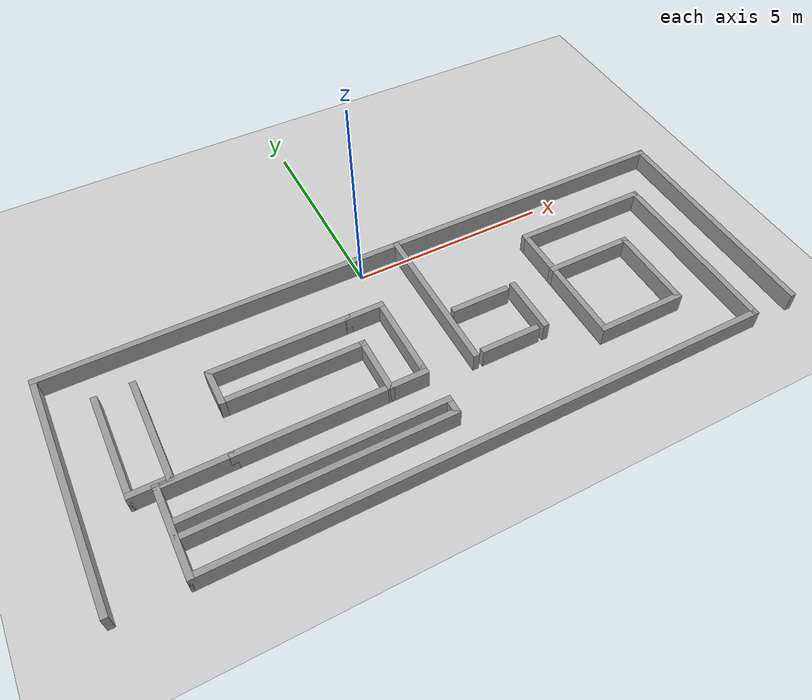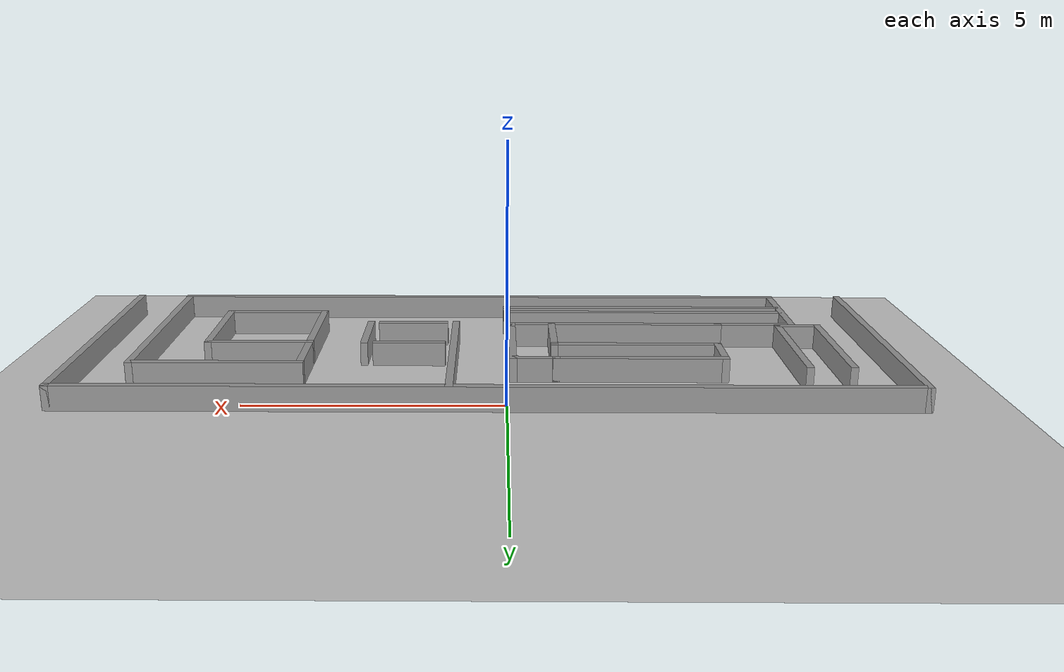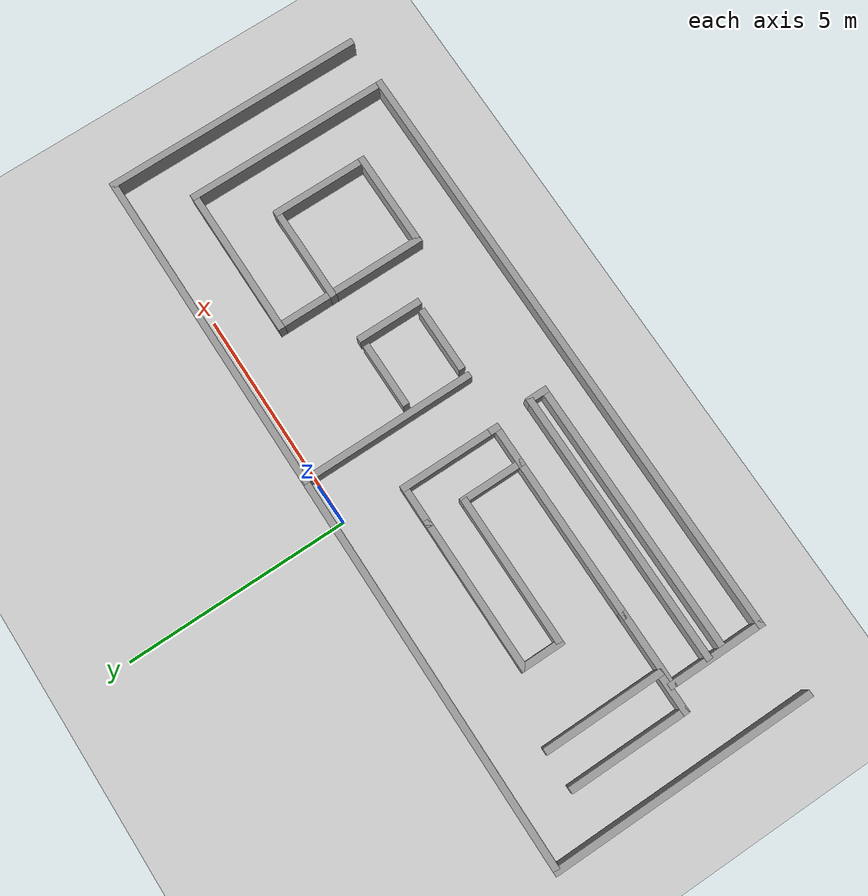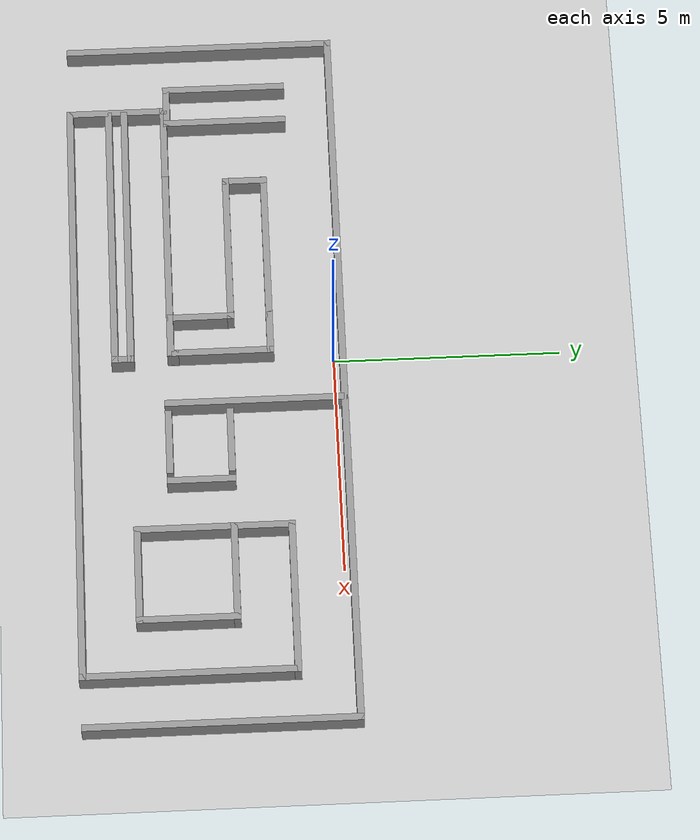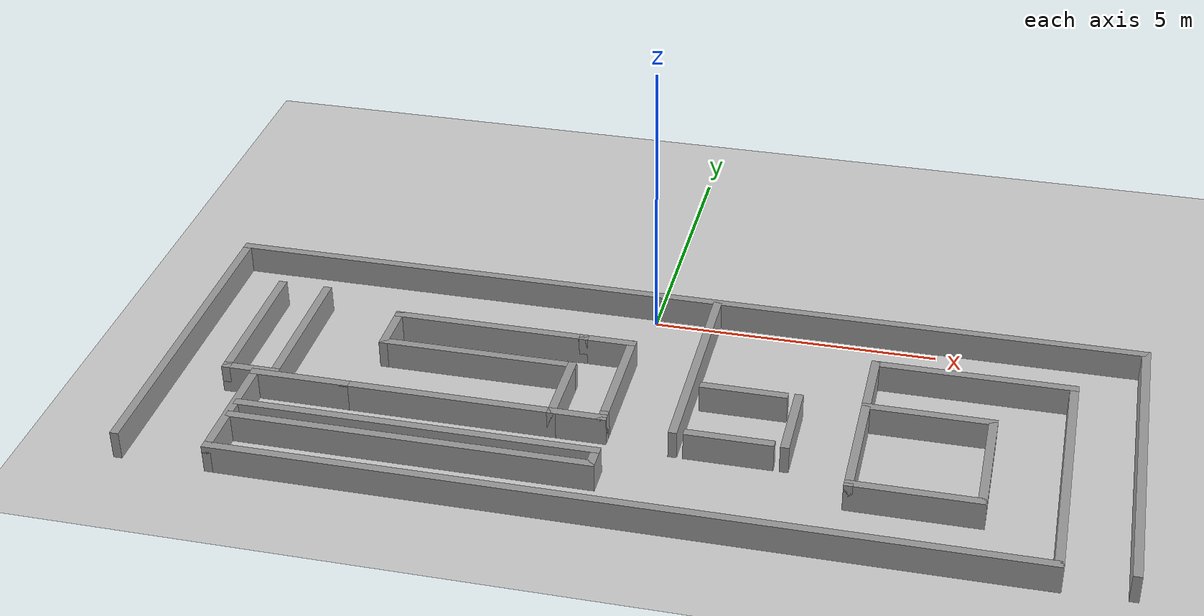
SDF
<sdf version="1.6">
 <world name="default">
  <light name="sun" type="directional">
   <pose>0 0 10 0 -0 0</pose>
   <diffuse>0.8 0.8 0.8 1</diffuse>
   <specular>0.1 0.1 0.1 1</specular>
   <attenuation>
    <range>1000</range>
    <constant>0.9</constant>
    <linear>0.01</linear>
    <quadratic>0.001</quadratic>
   </attenuation>
   <direction>-0.5 0.5 -1</direction>
  </light>
  <model name="ground_plane">
   <static>1</static>
   <link name="link">
    <collision name="collision">
     <geometry><plane><normal>0 0 1</normal><size>100 100</size></plane></geometry>
     <surface><friction><ode><mu>100</mu><mu2>50</mu2></ode></friction></surface>
    </collision>
    <visual name="visual">
     <cast_shadows>0</cast_shadows>
     <geometry><plane><normal>0 0 1</normal><size>100 100</size></plane></geometry>
     <material>
      <script><uri>file://media/materials/scripts/gazebo.material</uri><name>Gazebo/Grey</name></script>
     </material>
    </visual>
   </link>
  </model>
  <gravity>0 0 -9.8</gravity>
  <magnetic_field>6e-06 2.3e-05 -4.2e-05</magnetic_field>
  <atmosphere type="adiabatic"/>
  <physics name="default_physics" default="0" type="ode">
   <max_step_size>0.01</max_step_size>
   <real_time_factor>1</real_time_factor>
   <real_time_update_rate>1000</real_time_update_rate>
  </physics>
  <scene><ambient>0.4 0.4 0.4 1</ambient><background>0.7 0.7 0.7 1</background><shadows>1</shadows></scene>
  <spherical_coordinates>
   <surface_model>EARTH_WGS84</surface_model>
   <latitude_deg>0</latitude_deg>
   <longitude_deg>0</longitude_deg>
   <elevation>0</elevation>
   <heading_deg>0</heading_deg>
  </spherical_coordinates>
  <model name="labyrinthe3">
   <pose>0.383289 -2.74641 0 0 -0 0</pose>
   <link name="Wall_0">
    <collision name="Wall_0_Collision">
     <geometry><box><size>6 0.15 0.5</size></box></geometry>
     <pose>0 0 0.25 0 -0 0</pose>
    </collision>
    <visual name="Wall_0_Visual">
     <pose>0 0 0.25 0 -0 0</pose>
     <geometry><box><size>6 0.15 0.5</size></box></geometry>
     <material>
      <script><uri>file://media/materials/scripts/gazebo.material</uri><name>Gazebo/Grey</name></script>
      <ambient>1 1 1 1</ambient>
     </material>
    </visual>
    <pose>-8.175 0.015209 0 0 -0 1.5708</pose>
   </link>
   <link name="Wall_1">
    <collision name="Wall_1_Collision">
     <geometry><box><size>16.5 0.15 0.5</size></box></geometry>
     <pose>0 0 0.25 0 -0 0</pose>
    </collision>
    <visual name="Wall_1_Visual">
     <pose>0 0 0.25 0 -0 0</pose>
     <geometry><box><size>16.5 0.15 0.5</size></box></geometry>
     <material>
      <script><uri>file://media/materials/scripts/gazebo.material</uri><name>Gazebo/Grey</name></script>
      <ambient>1 1 1 1</ambient>
     </material>
    </visual>
    <pose>0 2.94021 0 0 -0 0</pose>
   </link>
   <link name="Wall_10">
    <collision name="Wall_10_Collision">
     <geometry><box><size>2.25 0.15 0.5</size></box></geometry>
     <pose>0 0 0.25 0 -0 0</pose>
    </collision>
    <visual name="Wall_10_Visual">
     <pose>0 0 0.25 0 -0 0</pose>
     <geometry><box><size>2.25 0.15 0.5</size></box></geometry>
     <material>
      <script><uri>file://media/materials/scripts/gazebo.material</uri><name>Gazebo/Grey</name></script>
      <ambient>1 1 1 1</ambient>
     </material>
    </visual>
    <pose>-6.57808 -1.89021 0 0 -0 1.5708</pose>
   </link>
   <link name="Wall_11">
    <collision name="Wall_11_Collision">
     <geometry><box><size>1.75 0.15 0.5</size></box></geometry>
     <pose>0 0 0.25 0 -0 0</pose>
    </collision>
    <visual name="Wall_11_Visual">
     <pose>0 0 0.25 0 -0 0</pose>
     <geometry><box><size>1.75 0.15 0.5</size></box></geometry>
     <material>
      <script><uri>file://media/materials/scripts/gazebo.material</uri><name>Gazebo/Grey</name></script>
      <ambient>1 1 1 1</ambient>
     </material>
    </visual>
    <pose>-5.77808 -0.840209 0 0 -0 0</pose>
   </link>
   <link name="Wall_12">
    <collision name="Wall_12_Collision">
     <geometry><box><size>3.75 0.15 0.5</size></box></geometry>
     <pose>0 0 0.25 0 -0 0</pose>
    </collision>
    <visual name="Wall_12_Visual">
     <pose>0 0 0.25 0 -0 0</pose>
     <geometry><box><size>3.75 0.15 0.5</size></box></geometry>
     <material>
      <script><uri>file://media/materials/scripts/gazebo.material</uri><name>Gazebo/Grey</name></script>
      <ambient>1 1 1 1</ambient>
     </material>
    </visual>
    <pose>-3.17808 -0.840209 0 0 -0 0</pose>
   </link>
   <link name="Wall_13">
    <collision name="Wall_13_Collision">
     <geometry><box><size>1.5 0.15 0.5</size></box></geometry>
     <pose>0 0 0.25 0 -0 0</pose>
    </collision>
    <visual name="Wall_13_Visual">
     <pose>0 0 0.25 0 -0 0</pose>
     <geometry><box><size>1.5 0.15 0.5</size></box></geometry>
     <material>
      <script><uri>file://media/materials/scripts/gazebo.material</uri><name>Gazebo/Grey</name></script>
      <ambient>1 1 1 1</ambient>
     </material>
    </visual>
    <pose>-1.37808 -0.165209 0 0 -0 1.5708</pose>
   </link>
   <link name="Wall_14">
    <collision name="Wall_14_Collision">
     <geometry><box><size>3.5 0.15 0.5</size></box></geometry>
     <pose>0 0 0.25 0 -0 0</pose>
    </collision>
    <visual name="Wall_14_Visual">
     <pose>0 0 0.25 0 -0 0</pose>
     <geometry><box><size>3.5 0.15 0.5</size></box></geometry>
     <material>
      <script><uri>file://media/materials/scripts/gazebo.material</uri><name>Gazebo/Grey</name></script>
      <ambient>1 1 1 1</ambient>
     </material>
    </visual>
    <pose>-3.05308 0.509791 0 0 -0 3.14159</pose>
   </link>
   <link name="Wall_15">
    <collision name="Wall_15_Collision">
     <geometry><box><size>1 0.15 0.5</size></box></geometry>
     <pose>0 0 0.25 0 -0 0</pose>
    </collision>
    <visual name="Wall_15_Visual">
     <pose>0 0 0.25 0 -0 0</pose>
     <geometry><box><size>1 0.15 0.5</size></box></geometry>
     <material>
      <script><uri>file://media/materials/scripts/gazebo.material</uri><name>Gazebo/Grey</name></script>
      <ambient>1 1 1 1</ambient>
     </material>
    </visual>
    <pose>-4.72808 0.934791 0 0 -0 1.5708</pose>
   </link>
   <link name="Wall_16">
    <collision name="Wall_16_Collision">
     <geometry><box><size>3.5 0.15 0.5</size></box></geometry>
     <pose>0 0 0.25 0 -0 0</pose>
    </collision>
    <visual name="Wall_16_Visual">
     <pose>0 0 0.25 0 -0 0</pose>
     <geometry><box><size>3.5 0.15 0.5</size></box></geometry>
     <material>
      <script><uri>file://media/materials/scripts/gazebo.material</uri><name>Gazebo/Grey</name></script>
      <ambient>1 1 1 1</ambient>
     </material>
    </visual>
    <pose>-3.05308 1.35979 0 0 -0 0</pose>
   </link>
   <link name="Wall_17">
    <collision name="Wall_17_Collision">
     <geometry><box><size>0.16 0.15 0.5</size></box></geometry>
     <pose>0 0 0.25 0 -0 0</pose>
    </collision>
    <visual name="Wall_17_Visual">
     <pose>0 0 0.25 0 -0 0</pose>
     <geometry><box><size>0.16 0.15 0.5</size></box></geometry>
     <material>
      <script><uri>file://media/materials/scripts/gazebo.material</uri><name>Gazebo/Grey</name></script>
      <ambient>1 1 1 1</ambient>
     </material>
    </visual>
    <pose>-1.37308 1.35979 0 0 -0 0</pose>
   </link>
   <link name="Wall_18">
    <collision name="Wall_18_Collision">
     <geometry><box><size>1 0.15 0.5</size></box></geometry>
     <pose>0 0 0.25 0 -0 0</pose>
    </collision>
    <visual name="Wall_18_Visual">
     <pose>0 0 0.25 0 -0 0</pose>
     <geometry><box><size>1 0.15 0.5</size></box></geometry>
     <material>
      <script><uri>file://media/materials/scripts/gazebo.material</uri><name>Gazebo/Grey</name></script>
      <ambient>1 1 1 1</ambient>
     </material>
    </visual>
    <pose>-0.943081 1.35979 0 0 -0 0</pose>
   </link>
   <link name="Wall_19">
    <collision name="Wall_19_Collision">
     <geometry><box><size>2.25 0.15 0.5</size></box></geometry>
     <pose>0 0 0.25 0 -0 0</pose>
    </collision>
    <visual name="Wall_19_Visual">
     <pose>0 0 0.25 0 -0 0</pose>
     <geometry><box><size>2.25 0.15 0.5</size></box></geometry>
     <material>
      <script><uri>file://media/materials/scripts/gazebo.material</uri><name>Gazebo/Grey</name></script>
      <ambient>1 1 1 1</ambient>
     </material>
    </visual>
    <pose>-0.518081 0.309791 0 0 0 -1.5708</pose>
   </link>
   <link name="Wall_2">
    <collision name="Wall_2_Collision">
     <geometry><box><size>6 0.15 0.5</size></box></geometry>
     <pose>0 0 0.25 0 -0 0</pose>
    </collision>
    <visual name="Wall_2_Visual">
     <pose>0 0 0.25 0 -0 0</pose>
     <geometry><box><size>6 0.15 0.5</size></box></geometry>
     <material>
      <script><uri>file://media/materials/scripts/gazebo.material</uri><name>Gazebo/Grey</name></script>
      <ambient>1 1 1 1</ambient>
     </material>
    </visual>
    <pose>8.175 0.015209 0 0 0 -1.5708</pose>
   </link>
   <link name="Wall_20">
    <collision name="Wall_20_Collision">
     <geometry><box><size>0.25 0.15 0.5</size></box></geometry>
     <pose>0 0 0.25 0 -0 0</pose>
    </collision>
    <visual name="Wall_20_Visual">
     <pose>0 0 0.25 0 -0 0</pose>
     <geometry><box><size>0.25 0.15 0.5</size></box></geometry>
     <material>
      <script><uri>file://media/materials/scripts/gazebo.material</uri><name>Gazebo/Grey</name></script>
      <ambient>1 1 1 1</ambient>
     </material>
    </visual>
    <pose>-0.518081 -0.790209 0 0 0 -1.5708</pose>
   </link>
   <link name="Wall_21">
    <collision name="Wall_21_Collision">
     <geometry><box><size>1.01 0.15 0.5</size></box></geometry>
     <pose>0 0 0.25 0 -0 0</pose>
    </collision>
    <visual name="Wall_21_Visual">
     <pose>0 0 0.25 0 -0 0</pose>
     <geometry><box><size>1.01 0.15 0.5</size></box></geometry>
     <material>
      <script><uri>file://media/materials/scripts/gazebo.material</uri><name>Gazebo/Grey</name></script>
      <ambient>1 1 1 1</ambient>
     </material>
    </visual>
    <pose>-0.948081 -0.840209 0 0 -0 3.14159</pose>
   </link>
   <link name="Wall_23">
    <collision name="Wall_23_Collision">
     <geometry><box><size>13.75 0.15 0.5</size></box></geometry>
     <pose>0 0 0.25 0 -0 0</pose>
    </collision>
    <visual name="Wall_23_Visual">
     <pose>0 0 0.25 0 -0 0</pose>
     <geometry><box><size>13.75 0.15 0.5</size></box></geometry>
     <material>
      <script><uri>file://media/materials/scripts/gazebo.material</uri><name>Gazebo/Grey</name></script>
      <ambient>1 1 1 1</ambient>
     </material>
    </visual>
    <pose>0.221919 -2.94021 0 0 -0 0</pose>
   </link>
   <link name="Wall_24">
    <collision name="Wall_24_Collision">
     <geometry><box><size>4.75 0.15 0.5</size></box></geometry>
     <pose>0 0 0.25 0 -0 0</pose>
    </collision>
    <visual name="Wall_24_Visual">
     <pose>0 0 0.25 0 -0 0</pose>
     <geometry><box><size>4.75 0.15 0.5</size></box></geometry>
     <material>
      <script><uri>file://media/materials/scripts/gazebo.material</uri><name>Gazebo/Grey</name></script>
      <ambient>1 1 1 1</ambient>
     </material>
    </visual>
    <pose>7.02192 -0.640209 0 0 -0 1.5708</pose>
   </link>
   <link name="Wall_26">
    <collision name="Wall_26_Collision">
     <geometry><box><size>4 0.15 0.5</size></box></geometry>
     <pose>0 0 0.25 0 -0 0</pose>
    </collision>
    <visual name="Wall_26_Visual">
     <pose>0 0 0.25 0 -0 0</pose>
     <geometry><box><size>4 0.15 0.5</size></box></geometry>
     <material>
      <script><uri>file://media/materials/scripts/gazebo.material</uri><name>Gazebo/Grey</name></script>
      <ambient>1 1 1 1</ambient>
     </material>
    </visual>
    <pose>0.691701 0.99016 0 0 0 -1.5708</pose>
   </link>
   <link name="Wall_27">
    <collision name="Wall_27_Collision">
     <geometry><box><size>1.5 0.15 0.5</size></box></geometry>
     <pose>0 0 0.25 0 -0 0</pose>
    </collision>
    <visual name="Wall_27_Visual">
     <pose>0 0 0.25 0 -0 0</pose>
     <geometry><box><size>1.5 0.15 0.5</size></box></geometry>
     <material>
      <script><uri>file://media/materials/scripts/gazebo.material</uri><name>Gazebo/Grey</name></script>
      <ambient>1 1 1 1</ambient>
     </material>
    </visual>
    <pose>1.6167 -0.93484 0 0 -0 0</pose>
   </link>
   <link name="Wall_28">
    <collision name="Wall_28_Collision">
     <geometry><box><size>1.5 0.15 0.5</size></box></geometry>
     <pose>0 0 0.25 0 -0 0</pose>
    </collision>
    <visual name="Wall_28_Visual">
     <pose>0 0 0.25 0 -0 0</pose>
     <geometry><box><size>1.5 0.15 0.5</size></box></geometry>
     <material>
      <script><uri>file://media/materials/scripts/gazebo.material</uri><name>Gazebo/Grey</name></script>
      <ambient>1 1 1 1</ambient>
     </material>
    </visual>
    <pose>2.5417 -0.25984 0 0 -0 1.5708</pose>
   </link>
   <link name="Wall_29">
    <collision name="Wall_29_Collision">
     <geometry><box><size>1.5 0.15 0.5</size></box></geometry>
     <pose>0 0 0.25 0 -0 0</pose>
    </collision>
    <visual name="Wall_29_Visual">
     <pose>0 0 0.25 0 -0 0</pose>
     <geometry><box><size>1.5 0.15 0.5</size></box></geometry>
     <material>
      <script><uri>file://media/materials/scripts/gazebo.material</uri><name>Gazebo/Grey</name></script>
      <ambient>1 1 1 1</ambient>
     </material>
    </visual>
    <pose>1.6167 0.41516 0 0 -0 3.14159</pose>
   </link>
   <link name="Wall_31">
    <collision name="Wall_31_Collision">
     <geometry><box><size>3.5 0.15 0.5</size></box></geometry>
     <pose>0 0 0.25 0 -0 0</pose>
    </collision>
    <visual name="Wall_31_Visual">
     <pose>0 0 0.25 0 -0 0</pose>
     <geometry><box><size>3.5 0.15 0.5</size></box></geometry>
     <material>
      <script><uri>file://media/materials/scripts/gazebo.material</uri><name>Gazebo/Grey</name></script>
      <ambient>1 1 1 1</ambient>
     </material>
    </visual>
    <pose>5.34692 1.65979 0 0 -0 3.14159</pose>
   </link>
   <link name="Wall_32">
    <collision name="Wall_32_Collision">
     <geometry><box><size>3.5 0.15 0.5</size></box></geometry>
     <pose>0 0 0.25 0 -0 0</pose>
    </collision>
    <visual name="Wall_32_Visual">
     <pose>0 0 0.25 0 -0 0</pose>
     <geometry><box><size>3.5 0.15 0.5</size></box></geometry>
     <material>
      <script><uri>file://media/materials/scripts/gazebo.material</uri><name>Gazebo/Grey</name></script>
      <ambient>1 1 1 1</ambient>
     </material>
    </visual>
    <pose>3.67192 -0.015209 0 0 0 -1.5708</pose>
   </link>
   <link name="Wall_33">
    <collision name="Wall_33_Collision">
     <geometry><box><size>2.25 0.15 0.5</size></box></geometry>
     <pose>0 0 0.25 0 -0 0</pose>
    </collision>
    <visual name="Wall_33_Visual">
     <pose>0 0 0.25 0 -0 0</pose>
     <geometry><box><size>2.25 0.15 0.5</size></box></geometry>
     <material>
      <script><uri>file://media/materials/scripts/gazebo.material</uri><name>Gazebo/Grey</name></script>
      <ambient>1 1 1 1</ambient>
     </material>
    </visual>
    <pose>4.72192 -1.69021 0 0 -0 0</pose>
   </link>
   <link name="Wall_34">
    <collision name="Wall_34_Collision">
     <geometry><box><size>2.25 0.15 0.5</size></box></geometry>
     <pose>0 0 0.25 0 -0 0</pose>
    </collision>
    <visual name="Wall_34_Visual">
     <pose>0 0 0.25 0 -0 0</pose>
     <geometry><box><size>2.25 0.15 0.5</size></box></geometry>
     <material>
      <script><uri>file://media/materials/scripts/gazebo.material</uri><name>Gazebo/Grey</name></script>
      <ambient>1 1 1 1</ambient>
     </material>
    </visual>
    <pose>5.77192 -0.640209 0 0 -0 1.5708</pose>
   </link>
   <link name="Wall_35">
    <collision name="Wall_35_Collision">
     <geometry><box><size>2.25 0.15 0.5</size></box></geometry>
     <pose>0 0 0.25 0 -0 0</pose>
    </collision>
    <visual name="Wall_35_Visual">
     <pose>0 0 0.25 0 -0 0</pose>
     <geometry><box><size>2.25 0.15 0.5</size></box></geometry>
     <material>
      <script><uri>file://media/materials/scripts/gazebo.material</uri><name>Gazebo/Grey</name></script>
      <ambient>1 1 1 1</ambient>
     </material>
    </visual>
    <pose>4.72192 0.409791 0 0 -0 3.14159</pose>
   </link>
   <link name="Wall_37">
    <collision name="Wall_37_Collision">
     <geometry><box><size>6.25 0.15 0.5</size></box></geometry>
     <pose>0 0 0.25 0 -0 0</pose>
    </collision>
    <visual name="Wall_37_Visual">
     <pose>0 0 0.25 0 -0 0</pose>
     <geometry><box><size>6.25 0.15 0.5</size></box></geometry>
     <material>
      <script><uri>file://media/materials/scripts/gazebo.material</uri><name>Gazebo/Grey</name></script>
      <ambient>1 1 1 1</ambient>
     </material>
    </visual>
    <pose>-3.46725 -1.72351 0 0 -0 0</pose>
   </link>
   <link name="Wall_38">
    <collision name="Wall_38_Collision">
     <geometry><box><size>0.5 0.15 0.5</size></box></geometry>
     <pose>0 0 0.25 0 -0 0</pose>
    </collision>
    <visual name="Wall_38_Visual">
     <pose>0 0 0.25 0 -0 0</pose>
     <geometry><box><size>0.5 0.15 0.5</size></box></geometry>
     <material>
      <script><uri>file://media/materials/scripts/gazebo.material</uri><name>Gazebo/Grey</name></script>
      <ambient>1 1 1 1</ambient>
     </material>
    </visual>
    <pose>-0.417246 -1.89851 0 0 0 -1.5708</pose>
   </link>
   <link name="Wall_39">
    <collision name="Wall_39_Collision">
     <geometry><box><size>6.25 0.15 0.5</size></box></geometry>
     <pose>0 0 0.25 0 -0 0</pose>
    </collision>
    <visual name="Wall_39_Visual">
     <pose>0 0 0.25 0 -0 0</pose>
     <geometry><box><size>6.25 0.15 0.5</size></box></geometry>
     <material>
      <script><uri>file://media/materials/scripts/gazebo.material</uri><name>Gazebo/Grey</name></script>
      <ambient>1 1 1 1</ambient>
     </material>
    </visual>
    <pose>-3.46725 -2.07351 0 0 -0 3.14159</pose>
   </link>
   <link name="Wall_4">
    <collision name="Wall_4_Collision">
     <geometry><box><size>2.75 0.15 0.5</size></box></geometry>
     <pose>-1 0 0.25 0 -0 0</pose>
    </collision>
    <visual name="Wall_4_Visual">
     <pose>-1 0 0.25 0 -0 0</pose>
     <geometry><box><size>2.75 0.15 0.5</size></box></geometry>
     <material>
      <script><uri>file://media/materials/scripts/gazebo.material</uri><name>Gazebo/Grey</name></script>
      <ambient>1 1 1 1</ambient>
     </material>
    </visual>
    <pose>-7.11039 1.53842 0 0 -0 1.5708</pose>
   </link>
   <link name="Wall_6">
    <collision name="Wall_6_Collision">
     <geometry><box><size>1 0.15 0.5</size></box></geometry>
     <pose>0 -1 0.25 0 -0 0</pose>
    </collision>
    <visual name="Wall_6_Visual">
     <pose>0 -1 0.25 0 -0 0</pose>
     <geometry><box><size>1 0.15 0.5</size></box></geometry>
     <material>
      <script><uri>file://media/materials/scripts/gazebo.material</uri><name>Gazebo/Grey</name></script>
      <ambient>1 1 1 1</ambient>
     </material>
    </visual>
    <pose>-6.68539 0.23842 0 0 -0 0</pose>
   </link>
   <link name="Wall_7">
    <collision name="Wall_7_Collision">
     <geometry><box><size>2.75 0.15 0.5</size></box></geometry>
     <pose>-1 0 0.25 0 -0 0</pose>
    </collision>
    <visual name="Wall_7_Visual">
     <pose>-1 0 0.25 0 -0 0</pose>
     <geometry><box><size>2.75 0.15 0.5</size></box></geometry>
     <material>
      <script><uri>file://media/materials/scripts/gazebo.material</uri><name>Gazebo/Grey</name></script>
      <ambient>1 1 1 1</ambient>
     </material>
    </visual>
    <pose>-6.26039 1.53842 0 0 -0 1.5708</pose>
   </link>
   <static>1</static>
  </model>
 </world>
</sdf>
